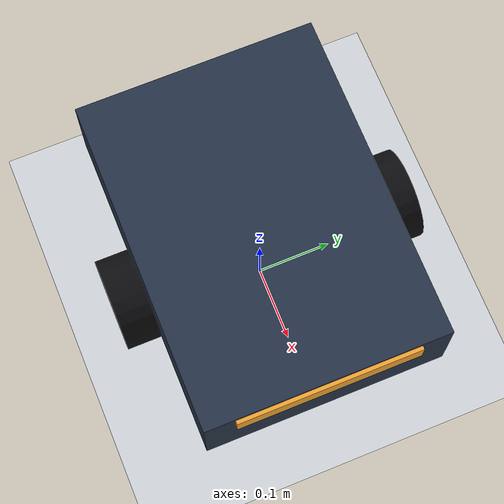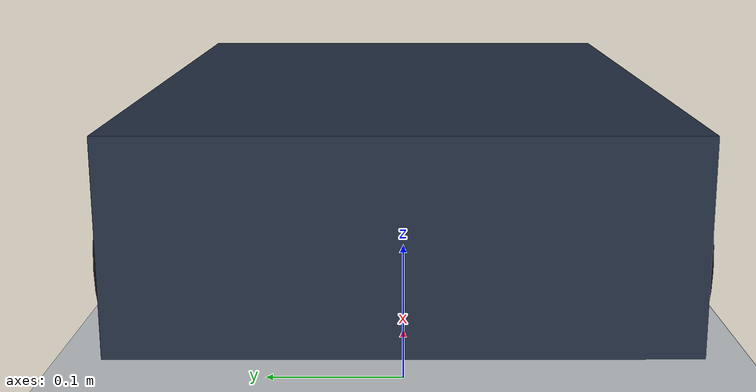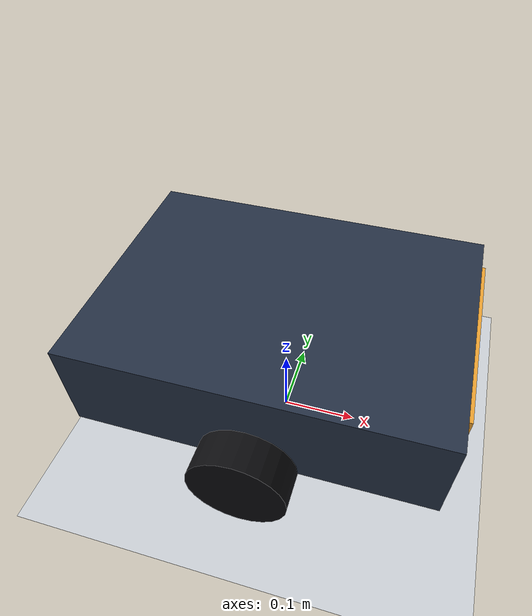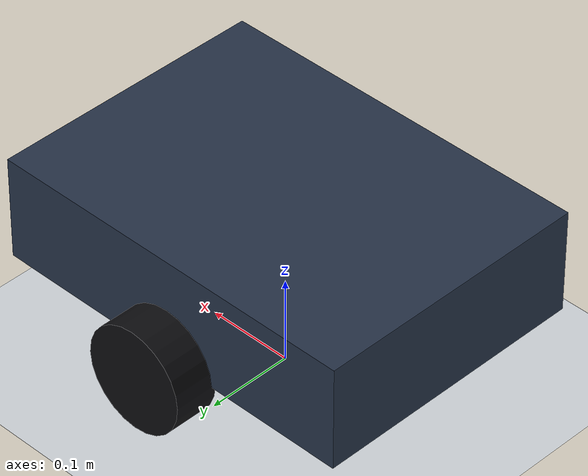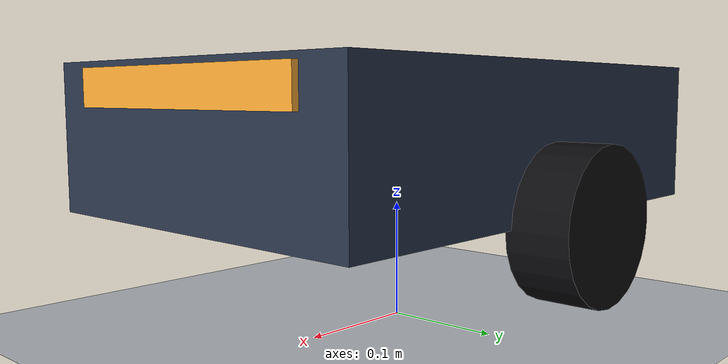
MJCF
<mujoco model="winros_differential_drive">
  <compiler angle="degree"/>
  <option timestep="0.002" gravity="0 0 -9.81"/>

  <default>
    <joint damping="0.05"/>
    <geom friction="1.0 0.1 0.1" density="400"/>
  </default>

  <worldbody>
    <light name="key" pos="0 -3 3" dir="0 1 -1"/>
    <geom name="floor" type="plane" size="3 3 0.05" rgba="0.82 0.84 0.86 1"/>

    <body name="base" pos="0 0 0.16">
      <freejoint name="base_free"/>
      <geom name="chassis" type="box" size="0.22 0.16 0.06" rgba="0.15 0.2 0.28 1"/>
      <geom name="front_marker" type="box" pos="0.2 0 0.04" size="0.025 0.12 0.015" rgba="0.95 0.65 0.2 1"/>

      <body name="left_wheel_body" pos="0 0.18 -0.06">
        <joint name="left_wheel" type="hinge" axis="0 1 0"/>
        <geom name="left_wheel_geom" type="cylinder" size="0.06 0.025" euler="90 0 0" rgba="0.05 0.05 0.06 1"/>
      </body>

      <body name="right_wheel_body" pos="0 -0.18 -0.06">
        <joint name="right_wheel" type="hinge" axis="0 1 0"/>
        <geom name="right_wheel_geom" type="cylinder" size="0.06 0.025" euler="90 0 0" rgba="0.05 0.05 0.06 1"/>
      </body>
    </body>
  </worldbody>

  <actuator>
    <motor name="left_wheel_motor" joint="left_wheel" gear="8" ctrlrange="-1 1"/>
    <motor name="right_wheel_motor" joint="right_wheel" gear="8" ctrlrange="-1 1"/>
  </actuator>
</mujoco>
